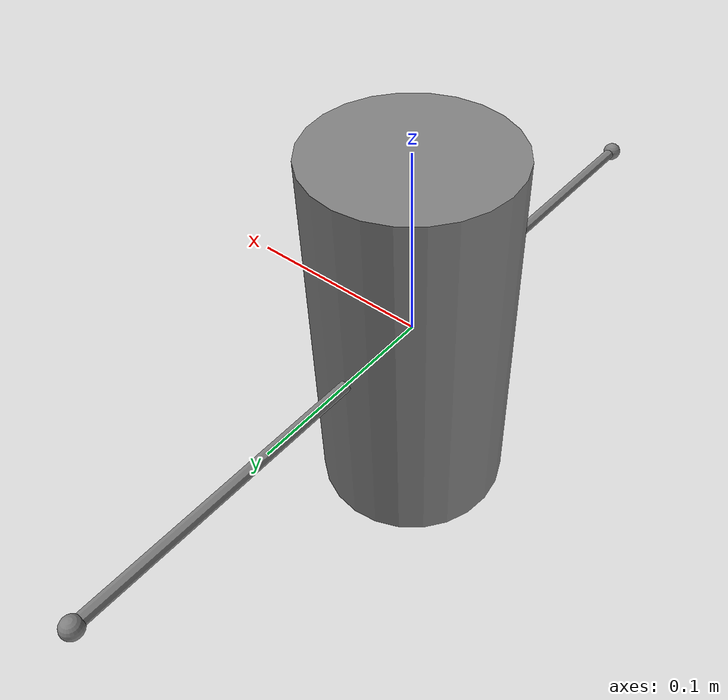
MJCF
<mujoco>
  <worldbody>
    <body name="femur" pos="0 0 0">
      <geom name="knee_pulley" type="cylinder" size="0.05 0.1"/>
      <site name="origin" pos="0 0.2 0"/>
      <body name="tibia" pos="0 0 0">
        <joint name="knee" type="hinge" axis="0 0 1"/>
        <site name="insertion" pos="0 -0.2 0"/>
      </body>
    </body>
  </worldbody>
  <tendon>
    <spatial name="quad">
      <site site="origin"/>
      <geom geom="knee_pulley"/>
      <site site="insertion"/>
    </spatial>
  </tendon>
</mujoco>
